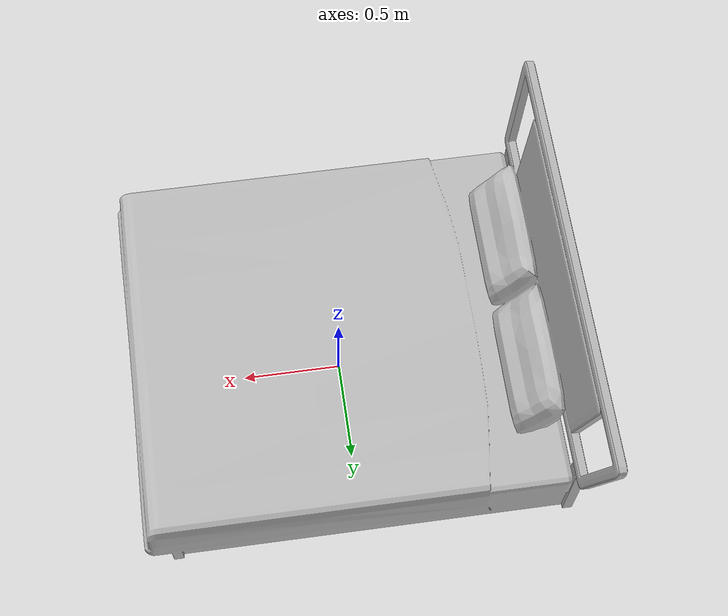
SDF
<?xml version='1.0'?>
<sdf version='1.4'>
  <model name='204'>
    <pose>0 0 0 0 0 0</pose>
    <static>true</static>
    <link name='link'>
      <collision name='collision'>
        <pose>0 0 0 0 0 0</pose>
        <geometry>
          <box>
            <size>2.19636 2.19 2</size>
          </box>
        </geometry>
      </collision>
      <visual name='visual'>
        <pose>0 0 0 0 0 0</pose>
        <geometry>
          <mesh><uri>model://204/204.dae</uri></mesh>
        </geometry>
      </visual>
    </link>
  </model>
</sdf>
